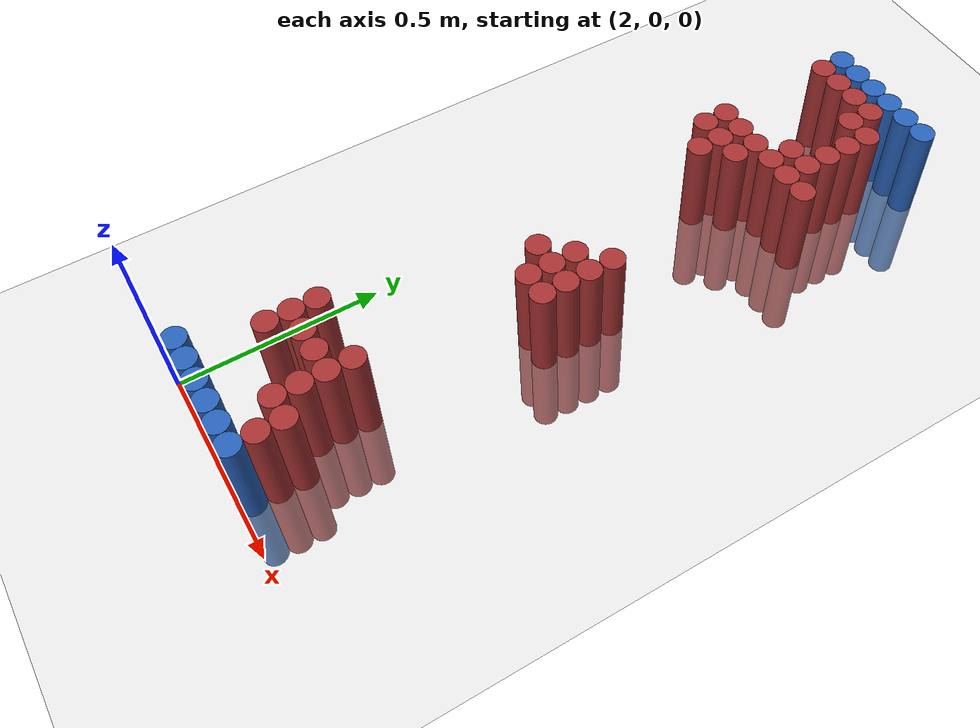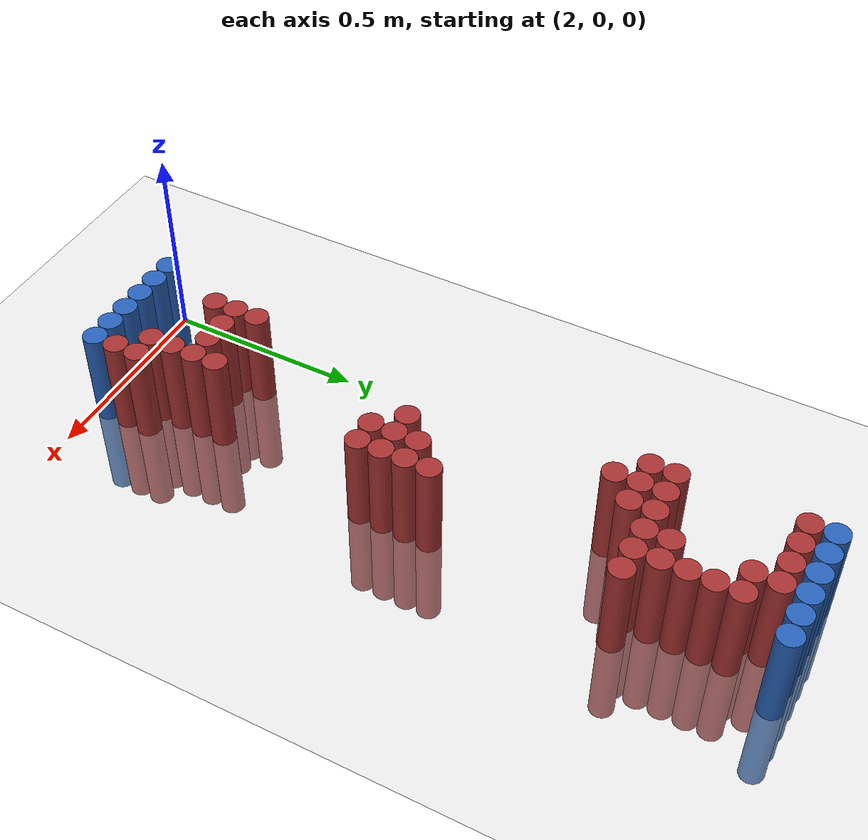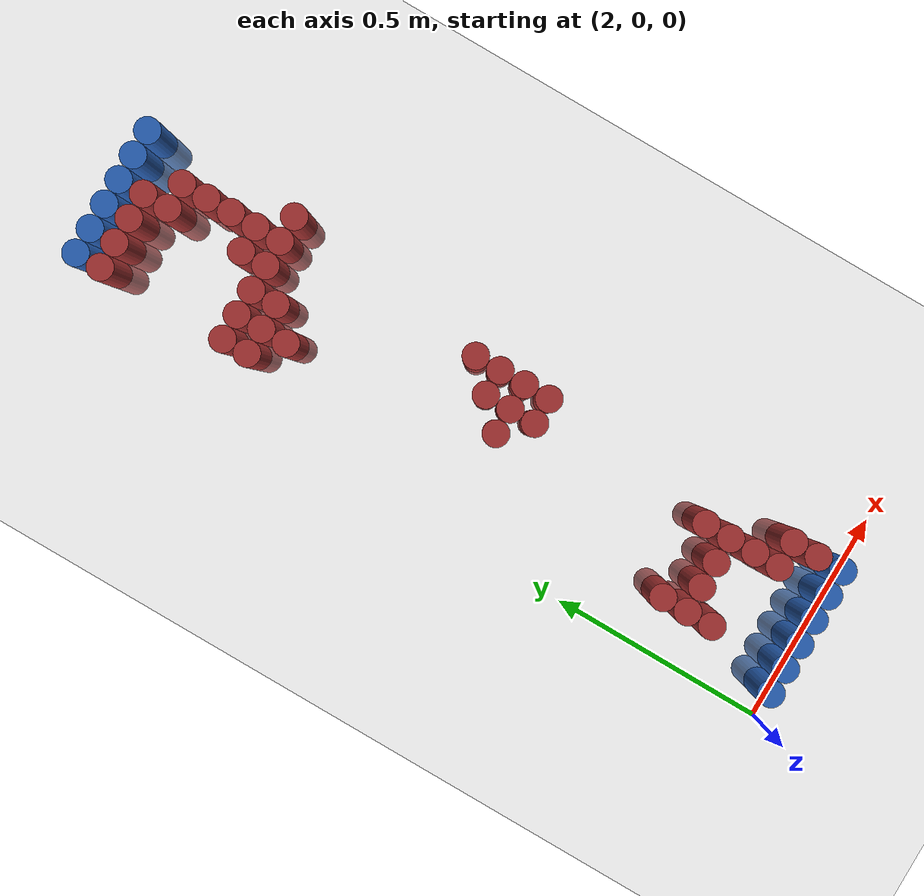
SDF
<sdf version="1.6">
 <world name="default">
  <model name="ground_plane">
   <static>1</static>
   <link name="link">
    <collision name="collision">
     <geometry><plane><normal>0 0 1</normal><size>100 100</size></plane></geometry>
     <surface><friction><ode><mu>100</mu><mu2>50</mu2></ode></friction></surface>
    </collision>
    <visual name="visual">
     <cast_shadows>0</cast_shadows>
     <geometry><plane><normal>0 0 1</normal><size>100 100</size></plane></geometry>
     <material>
      <script><uri>file://media/materials/scripts/gazebo.material</uri><name>Gazebo/Grey</name></script>
     </material>
    </visual>
   </link>
  </model>
  <model name="unit_cylinder_96">
   <static>1</static>
   <pose>2.130000 1.770000 0.000000 0.000000 0.000000 0.000000</pose>
   <link name="link">
    <inertial>
     <mass>1</mass>
     <inertia><ixx>0.145833</ixx><ixy>0</ixy><ixz>0</ixz><iyy>0.145833</iyy><iyz>0</iyz><izz>0.125</izz></inertia>
    </inertial>
    <collision name="collision">
     <geometry><cylinder><radius>0.030000</radius><length>0.5</length></cylinder></geometry>
    </collision>
    <visual name="visual">
     <geometry><cylinder><radius>0.030000</radius><length>0.5</length></cylinder></geometry>
     <material>
      <ambient>0.152000 0.379000 0.720000 1</ambient>
      <diffuse>0.152000 0.379000 0.720000 1</diffuse>
     </material>
     <material>
      <script><name>Gazebo/Grey</name><uri>file://media/materials/scripts/gazebo.material</uri></script>
     </material>
    </visual>
   </link>
  </model>
  <model name="unit_cylinder_97">
   <static>1</static>
   <pose>2.190000 1.770000 0.000000 0.000000 0.000000 0.000000</pose>
   <link name="link">
    <inertial>
     <mass>1</mass>
     <inertia><ixx>0.145833</ixx><ixy>0</ixy><ixz>0</ixz><iyy>0.145833</iyy><iyz>0</iyz><izz>0.125</izz></inertia>
    </inertial>
    <collision name="collision">
     <geometry><cylinder><radius>0.030000</radius><length>0.5</length></cylinder></geometry>
    </collision>
    <visual name="visual">
     <geometry><cylinder><radius>0.030000</radius><length>0.5</length></cylinder></geometry>
     <material>
      <ambient>0.152000 0.379000 0.720000 1</ambient>
      <diffuse>0.152000 0.379000 0.720000 1</diffuse>
     </material>
     <material>
      <script><name>Gazebo/Grey</name><uri>file://media/materials/scripts/gazebo.material</uri></script>
     </material>
    </visual>
   </link>
  </model>
  <model name="unit_cylinder_98">
   <static>1</static>
   <pose>2.250000 1.770000 0.000000 0.000000 0.000000 0.000000</pose>
   <link name="link">
    <inertial>
     <mass>1</mass>
     <inertia><ixx>0.145833</ixx><ixy>0</ixy><ixz>0</ixz><iyy>0.145833</iyy><iyz>0</iyz><izz>0.125</izz></inertia>
    </inertial>
    <collision name="collision">
     <geometry><cylinder><radius>0.030000</radius><length>0.5</length></cylinder></geometry>
    </collision>
    <visual name="visual">
     <geometry><cylinder><radius>0.030000</radius><length>0.5</length></cylinder></geometry>
     <material>
      <ambient>0.152000 0.379000 0.720000 1</ambient>
      <diffuse>0.152000 0.379000 0.720000 1</diffuse>
     </material>
     <material>
      <script><name>Gazebo/Grey</name><uri>file://media/materials/scripts/gazebo.material</uri></script>
     </material>
    </visual>
   </link>
  </model>
  <model name="unit_cylinder_99">
   <static>1</static>
   <pose>2.310000 1.770000 0.000000 0.000000 0.000000 0.000000</pose>
   <link name="link">
    <inertial>
     <mass>1</mass>
     <inertia><ixx>0.145833</ixx><ixy>0</ixy><ixz>0</ixz><iyy>0.145833</iyy><iyz>0</iyz><izz>0.125</izz></inertia>
    </inertial>
    <collision name="collision">
     <geometry><cylinder><radius>0.030000</radius><length>0.5</length></cylinder></geometry>
    </collision>
    <visual name="visual">
     <geometry><cylinder><radius>0.030000</radius><length>0.5</length></cylinder></geometry>
     <material>
      <ambient>0.152000 0.379000 0.720000 1</ambient>
      <diffuse>0.152000 0.379000 0.720000 1</diffuse>
     </material>
     <material>
      <script><name>Gazebo/Grey</name><uri>file://media/materials/scripts/gazebo.material</uri></script>
     </material>
    </visual>
   </link>
  </model>
  <model name="unit_cylinder_100">
   <static>1</static>
   <pose>2.370000 1.770000 0.000000 0.000000 0.000000 0.000000</pose>
   <link name="link">
    <inertial>
     <mass>1</mass>
     <inertia><ixx>0.145833</ixx><ixy>0</ixy><ixz>0</ixz><iyy>0.145833</iyy><iyz>0</iyz><izz>0.125</izz></inertia>
    </inertial>
    <collision name="collision">
     <geometry><cylinder><radius>0.030000</radius><length>0.5</length></cylinder></geometry>
    </collision>
    <visual name="visual">
     <geometry><cylinder><radius>0.030000</radius><length>0.5</length></cylinder></geometry>
     <material>
      <ambient>0.152000 0.379000 0.720000 1</ambient>
      <diffuse>0.152000 0.379000 0.720000 1</diffuse>
     </material>
     <material>
      <script><name>Gazebo/Grey</name><uri>file://media/materials/scripts/gazebo.material</uri></script>
     </material>
    </visual>
   </link>
  </model>
  <model name="unit_cylinder_101">
   <static>1</static>
   <pose>2.430000 1.770000 0.000000 0.000000 0.000000 0.000000</pose>
   <link name="link">
    <inertial>
     <mass>1</mass>
     <inertia><ixx>0.145833</ixx><ixy>0</ixy><ixz>0</ixz><iyy>0.145833</iyy><iyz>0</iyz><izz>0.125</izz></inertia>
    </inertial>
    <collision name="collision">
     <geometry><cylinder><radius>0.030000</radius><length>0.5</length></cylinder></geometry>
    </collision>
    <visual name="visual">
     <geometry><cylinder><radius>0.030000</radius><length>0.5</length></cylinder></geometry>
     <material>
      <ambient>0.152000 0.379000 0.720000 1</ambient>
      <diffuse>0.152000 0.379000 0.720000 1</diffuse>
     </material>
     <material>
      <script><name>Gazebo/Grey</name><uri>file://media/materials/scripts/gazebo.material</uri></script>
     </material>
    </visual>
   </link>
  </model>
  <model name="unit_cylinder_126">
   <static>1</static>
   <pose>2.130000 1.710000 0.000000 0.000000 0.000000 0.000000</pose>
   <link name="link">
    <inertial>
     <mass>1</mass>
     <inertia><ixx>0.145833</ixx><ixy>0</ixy><ixz>0</ixz><iyy>0.145833</iyy><iyz>0</iyz><izz>0.125</izz></inertia>
    </inertial>
    <collision name="collision">
     <geometry><cylinder><radius>0.030000</radius><length>0.5</length></cylinder></geometry>
    </collision>
    <visual name="visual">
     <geometry><cylinder><radius>0.030000</radius><length>0.5</length></cylinder></geometry>
     <material>
      <ambient>0.648000 0.192000 0.192000 1</ambient>
      <diffuse>0.648000 0.192000 0.192000 1</diffuse>
     </material>
     <material>
      <script><name>Gazebo/Grey</name><uri>file://media/materials/scripts/gazebo.material</uri></script>
     </material>
    </visual>
   </link>
  </model>
  <model name="unit_cylinder_127">
   <static>1</static>
   <pose>2.190000 1.710000 0.000000 0.000000 0.000000 0.000000</pose>
   <link name="link">
    <inertial>
     <mass>1</mass>
     <inertia><ixx>0.145833</ixx><ixy>0</ixy><ixz>0</ixz><iyy>0.145833</iyy><iyz>0</iyz><izz>0.125</izz></inertia>
    </inertial>
    <collision name="collision">
     <geometry><cylinder><radius>0.030000</radius><length>0.5</length></cylinder></geometry>
    </collision>
    <visual name="visual">
     <geometry><cylinder><radius>0.030000</radius><length>0.5</length></cylinder></geometry>
     <material>
      <ambient>0.648000 0.192000 0.192000 1</ambient>
      <diffuse>0.648000 0.192000 0.192000 1</diffuse>
     </material>
     <material>
      <script><name>Gazebo/Grey</name><uri>file://media/materials/scripts/gazebo.material</uri></script>
     </material>
    </visual>
   </link>
  </model>
  <model name="unit_cylinder_128">
   <static>1</static>
   <pose>2.250000 1.710000 0.000000 0.000000 0.000000 0.000000</pose>
   <link name="link">
    <inertial>
     <mass>1</mass>
     <inertia><ixx>0.145833</ixx><ixy>0</ixy><ixz>0</ixz><iyy>0.145833</iyy><iyz>0</iyz><izz>0.125</izz></inertia>
    </inertial>
    <collision name="collision">
     <geometry><cylinder><radius>0.030000</radius><length>0.5</length></cylinder></geometry>
    </collision>
    <visual name="visual">
     <geometry><cylinder><radius>0.030000</radius><length>0.5</length></cylinder></geometry>
     <material>
      <ambient>0.648000 0.192000 0.192000 1</ambient>
      <diffuse>0.648000 0.192000 0.192000 1</diffuse>
     </material>
     <material>
      <script><name>Gazebo/Grey</name><uri>file://media/materials/scripts/gazebo.material</uri></script>
     </material>
    </visual>
   </link>
  </model>
  <model name="unit_cylinder_129">
   <static>1</static>
   <pose>2.310000 1.710000 0.000000 0.000000 0.000000 0.000000</pose>
   <link name="link">
    <inertial>
     <mass>1</mass>
     <inertia><ixx>0.145833</ixx><ixy>0</ixy><ixz>0</ixz><iyy>0.145833</iyy><iyz>0</iyz><izz>0.125</izz></inertia>
    </inertial>
    <collision name="collision">
     <geometry><cylinder><radius>0.030000</radius><length>0.5</length></cylinder></geometry>
    </collision>
    <visual name="visual">
     <geometry><cylinder><radius>0.030000</radius><length>0.5</length></cylinder></geometry>
     <material>
      <ambient>0.648000 0.192000 0.192000 1</ambient>
      <diffuse>0.648000 0.192000 0.192000 1</diffuse>
     </material>
     <material>
      <script><name>Gazebo/Grey</name><uri>file://media/materials/scripts/gazebo.material</uri></script>
     </material>
    </visual>
   </link>
  </model>
  <model name="unit_cylinder_136">
   <static>1</static>
   <pose>2.310000 1.650000 0.000000 0.000000 0.000000 0.000000</pose>
   <link name="link">
    <inertial>
     <mass>1</mass>
     <inertia><ixx>0.145833</ixx><ixy>0</ixy><ixz>0</ixz><iyy>0.145833</iyy><iyz>0</iyz><izz>0.125</izz></inertia>
    </inertial>
    <collision name="collision">
     <geometry><cylinder><radius>0.030000</radius><length>0.5</length></cylinder></geometry>
    </collision>
    <visual name="visual">
     <geometry><cylinder><radius>0.030000</radius><length>0.5</length></cylinder></geometry>
     <material>
      <ambient>0.648000 0.192000 0.192000 1</ambient>
      <diffuse>0.648000 0.192000 0.192000 1</diffuse>
     </material>
     <material>
      <script><name>Gazebo/Grey</name><uri>file://media/materials/scripts/gazebo.material</uri></script>
     </material>
    </visual>
   </link>
  </model>
  <model name="unit_cylinder_137">
   <static>1</static>
   <pose>2.370000 1.650000 0.000000 0.000000 0.000000 0.000000</pose>
   <link name="link">
    <inertial>
     <mass>1</mass>
     <inertia><ixx>0.145833</ixx><ixy>0</ixy><ixz>0</ixz><iyy>0.145833</iyy><iyz>0</iyz><izz>0.125</izz></inertia>
    </inertial>
    <collision name="collision">
     <geometry><cylinder><radius>0.030000</radius><length>0.5</length></cylinder></geometry>
    </collision>
    <visual name="visual">
     <geometry><cylinder><radius>0.030000</radius><length>0.5</length></cylinder></geometry>
     <material>
      <ambient>0.648000 0.192000 0.192000 1</ambient>
      <diffuse>0.648000 0.192000 0.192000 1</diffuse>
     </material>
     <material>
      <script><name>Gazebo/Grey</name><uri>file://media/materials/scripts/gazebo.material</uri></script>
     </material>
    </visual>
   </link>
  </model>
  <model name="unit_cylinder_146">
   <static>1</static>
   <pose>2.370000 1.590000 0.000000 0.000000 0.000000 0.000000</pose>
   <link name="link">
    <inertial>
     <mass>1</mass>
     <inertia><ixx>0.145833</ixx><ixy>0</ixy><ixz>0</ixz><iyy>0.145833</iyy><iyz>0</iyz><izz>0.125</izz></inertia>
    </inertial>
    <collision name="collision">
     <geometry><cylinder><radius>0.030000</radius><length>0.5</length></cylinder></geometry>
    </collision>
    <visual name="visual">
     <geometry><cylinder><radius>0.030000</radius><length>0.5</length></cylinder></geometry>
     <material>
      <ambient>0.648000 0.192000 0.192000 1</ambient>
      <diffuse>0.648000 0.192000 0.192000 1</diffuse>
     </material>
     <material>
      <script><name>Gazebo/Grey</name><uri>file://media/materials/scripts/gazebo.material</uri></script>
     </material>
    </visual>
   </link>
  </model>
  <model name="unit_cylinder_153">
   <static>1</static>
   <pose>2.370000 1.530000 0.000000 0.000000 0.000000 0.000000</pose>
   <link name="link">
    <inertial>
     <mass>1</mass>
     <inertia><ixx>0.145833</ixx><ixy>0</ixy><ixz>0</ixz><iyy>0.145833</iyy><iyz>0</iyz><izz>0.125</izz></inertia>
    </inertial>
    <collision name="collision">
     <geometry><cylinder><radius>0.030000</radius><length>0.5</length></cylinder></geometry>
    </collision>
    <visual name="visual">
     <geometry><cylinder><radius>0.030000</radius><length>0.5</length></cylinder></geometry>
     <material>
      <ambient>0.648000 0.192000 0.192000 1</ambient>
      <diffuse>0.648000 0.192000 0.192000 1</diffuse>
     </material>
     <material>
      <script><name>Gazebo/Grey</name><uri>file://media/materials/scripts/gazebo.material</uri></script>
     </material>
    </visual>
   </link>
  </model>
  <model name="unit_cylinder_160">
   <static>1</static>
   <pose>2.310000 1.470000 0.000000 0.000000 0.000000 0.000000</pose>
   <link name="link">
    <inertial>
     <mass>1</mass>
     <inertia><ixx>0.145833</ixx><ixy>0</ixy><ixz>0</ixz><iyy>0.145833</iyy><iyz>0</iyz><izz>0.125</izz></inertia>
    </inertial>
    <collision name="collision">
     <geometry><cylinder><radius>0.030000</radius><length>0.5</length></cylinder></geometry>
    </collision>
    <visual name="visual">
     <geometry><cylinder><radius>0.030000</radius><length>0.5</length></cylinder></geometry>
     <material>
      <ambient>0.648000 0.192000 0.192000 1</ambient>
      <diffuse>0.648000 0.192000 0.192000 1</diffuse>
     </material>
     <material>
      <script><name>Gazebo/Grey</name><uri>file://media/materials/scripts/gazebo.material</uri></script>
     </material>
    </visual>
   </link>
  </model>
  <model name="unit_cylinder_161">
   <static>1</static>
   <pose>2.370000 1.470000 0.000000 0.000000 0.000000 0.000000</pose>
   <link name="link">
    <inertial>
     <mass>1</mass>
     <inertia><ixx>0.145833</ixx><ixy>0</ixy><ixz>0</ixz><iyy>0.145833</iyy><iyz>0</iyz><izz>0.125</izz></inertia>
    </inertial>
    <collision name="collision">
     <geometry><cylinder><radius>0.030000</radius><length>0.5</length></cylinder></geometry>
    </collision>
    <visual name="visual">
     <geometry><cylinder><radius>0.030000</radius><length>0.5</length></cylinder></geometry>
     <material>
      <ambient>0.648000 0.192000 0.192000 1</ambient>
      <diffuse>0.648000 0.192000 0.192000 1</diffuse>
     </material>
     <material>
      <script><name>Gazebo/Grey</name><uri>file://media/materials/scripts/gazebo.material</uri></script>
     </material>
    </visual>
   </link>
  </model>
  <model name="unit_cylinder_175">
   <static>1</static>
   <pose>2.130000 1.410000 0.000000 0.000000 0.000000 0.000000</pose>
   <link name="link">
    <inertial>
     <mass>1</mass>
     <inertia><ixx>0.145833</ixx><ixy>0</ixy><ixz>0</ixz><iyy>0.145833</iyy><iyz>0</iyz><izz>0.125</izz></inertia>
    </inertial>
    <collision name="collision">
     <geometry><cylinder><radius>0.030000</radius><length>0.5</length></cylinder></geometry>
    </collision>
    <visual name="visual">
     <geometry><cylinder><radius>0.030000</radius><length>0.5</length></cylinder></geometry>
     <material>
      <ambient>0.648000 0.192000 0.192000 1</ambient>
      <diffuse>0.648000 0.192000 0.192000 1</diffuse>
     </material>
     <material>
      <script><name>Gazebo/Grey</name><uri>file://media/materials/scripts/gazebo.material</uri></script>
     </material>
    </visual>
   </link>
  </model>
  <model name="unit_cylinder_176">
   <static>1</static>
   <pose>2.190000 1.410000 0.000000 0.000000 0.000000 0.000000</pose>
   <link name="link">
    <inertial>
     <mass>1</mass>
     <inertia><ixx>0.145833</ixx><ixy>0</ixy><ixz>0</ixz><iyy>0.145833</iyy><iyz>0</iyz><izz>0.125</izz></inertia>
    </inertial>
    <collision name="collision">
     <geometry><cylinder><radius>0.030000</radius><length>0.5</length></cylinder></geometry>
    </collision>
    <visual name="visual">
     <geometry><cylinder><radius>0.030000</radius><length>0.5</length></cylinder></geometry>
     <material>
      <ambient>0.648000 0.192000 0.192000 1</ambient>
      <diffuse>0.648000 0.192000 0.192000 1</diffuse>
     </material>
     <material>
      <script><name>Gazebo/Grey</name><uri>file://media/materials/scripts/gazebo.material</uri></script>
     </material>
    </visual>
   </link>
  </model>
  <model name="unit_cylinder_177">
   <static>1</static>
   <pose>2.250000 1.410000 0.000000 0.000000 0.000000 0.000000</pose>
   <link name="link">
    <inertial>
     <mass>1</mass>
     <inertia><ixx>0.145833</ixx><ixy>0</ixy><ixz>0</ixz><iyy>0.145833</iyy><iyz>0</iyz><izz>0.125</izz></inertia>
    </inertial>
    <collision name="collision">
     <geometry><cylinder><radius>0.030000</radius><length>0.5</length></cylinder></geometry>
    </collision>
    <visual name="visual">
     <geometry><cylinder><radius>0.030000</radius><length>0.5</length></cylinder></geometry>
     <material>
      <ambient>0.648000 0.192000 0.192000 1</ambient>
      <diffuse>0.648000 0.192000 0.192000 1</diffuse>
     </material>
     <material>
      <script><name>Gazebo/Grey</name><uri>file://media/materials/scripts/gazebo.material</uri></script>
     </material>
    </visual>
   </link>
  </model>
  <model name="unit_cylinder_178">
   <static>1</static>
   <pose>2.310000 1.410000 0.000000 0.000000 0.000000 0.000000</pose>
   <link name="link">
    <inertial>
     <mass>1</mass>
     <inertia><ixx>0.145833</ixx><ixy>0</ixy><ixz>0</ixz><iyy>0.145833</iyy><iyz>0</iyz><izz>0.125</izz></inertia>
    </inertial>
    <collision name="collision">
     <geometry><cylinder><radius>0.030000</radius><length>0.5</length></cylinder></geometry>
    </collision>
    <visual name="visual">
     <geometry><cylinder><radius>0.030000</radius><length>0.5</length></cylinder></geometry>
     <material>
      <ambient>0.648000 0.192000 0.192000 1</ambient>
      <diffuse>0.648000 0.192000 0.192000 1</diffuse>
     </material>
     <material>
      <script><name>Gazebo/Grey</name><uri>file://media/materials/scripts/gazebo.material</uri></script>
     </material>
    </visual>
   </link>
  </model>
  <model name="unit_cylinder_179">
   <static>1</static>
   <pose>2.370000 1.410000 0.000000 0.000000 0.000000 0.000000</pose>
   <link name="link">
    <inertial>
     <mass>1</mass>
     <inertia><ixx>0.145833</ixx><ixy>0</ixy><ixz>0</ixz><iyy>0.145833</iyy><iyz>0</iyz><izz>0.125</izz></inertia>
    </inertial>
    <collision name="collision">
     <geometry><cylinder><radius>0.030000</radius><length>0.5</length></cylinder></geometry>
    </collision>
    <visual name="visual">
     <geometry><cylinder><radius>0.030000</radius><length>0.5</length></cylinder></geometry>
     <material>
      <ambient>0.648000 0.192000 0.192000 1</ambient>
      <diffuse>0.648000 0.192000 0.192000 1</diffuse>
     </material>
     <material>
      <script><name>Gazebo/Grey</name><uri>file://media/materials/scripts/gazebo.material</uri></script>
     </material>
    </visual>
   </link>
  </model>
  <model name="unit_cylinder_180">
   <static>1</static>
   <pose>2.430000 1.410000 0.000000 0.000000 0.000000 0.000000</pose>
   <link name="link">
    <inertial>
     <mass>1</mass>
     <inertia><ixx>0.145833</ixx><ixy>0</ixy><ixz>0</ixz><iyy>0.145833</iyy><iyz>0</iyz><izz>0.125</izz></inertia>
    </inertial>
    <collision name="collision">
     <geometry><cylinder><radius>0.030000</radius><length>0.5</length></cylinder></geometry>
    </collision>
    <visual name="visual">
     <geometry><cylinder><radius>0.030000</radius><length>0.5</length></cylinder></geometry>
     <material>
      <ambient>0.648000 0.192000 0.192000 1</ambient>
      <diffuse>0.648000 0.192000 0.192000 1</diffuse>
     </material>
     <material>
      <script><name>Gazebo/Grey</name><uri>file://media/materials/scripts/gazebo.material</uri></script>
     </material>
    </visual>
   </link>
  </model>
  <model name="unit_cylinder_190">
   <static>1</static>
   <pose>2.130000 1.350000 0.000000 0.000000 0.000000 0.000000</pose>
   <link name="link">
    <inertial>
     <mass>1</mass>
     <inertia><ixx>0.145833</ixx><ixy>0</ixy><ixz>0</ixz><iyy>0.145833</iyy><iyz>0</iyz><izz>0.125</izz></inertia>
    </inertial>
    <collision name="collision">
     <geometry><cylinder><radius>0.030000</radius><length>0.5</length></cylinder></geometry>
    </collision>
    <visual name="visual">
     <geometry><cylinder><radius>0.030000</radius><length>0.5</length></cylinder></geometry>
     <material>
      <ambient>0.648000 0.192000 0.192000 1</ambient>
      <diffuse>0.648000 0.192000 0.192000 1</diffuse>
     </material>
     <material>
      <script><name>Gazebo/Grey</name><uri>file://media/materials/scripts/gazebo.material</uri></script>
     </material>
    </visual>
   </link>
  </model>
  <model name="unit_cylinder_191">
   <static>1</static>
   <pose>2.190000 1.350000 0.000000 0.000000 0.000000 0.000000</pose>
   <link name="link">
    <inertial>
     <mass>1</mass>
     <inertia><ixx>0.145833</ixx><ixy>0</ixy><ixz>0</ixz><iyy>0.145833</iyy><iyz>0</iyz><izz>0.125</izz></inertia>
    </inertial>
    <collision name="collision">
     <geometry><cylinder><radius>0.030000</radius><length>0.5</length></cylinder></geometry>
    </collision>
    <visual name="visual">
     <geometry><cylinder><radius>0.030000</radius><length>0.5</length></cylinder></geometry>
     <material>
      <ambient>0.648000 0.192000 0.192000 1</ambient>
      <diffuse>0.648000 0.192000 0.192000 1</diffuse>
     </material>
     <material>
      <script><name>Gazebo/Grey</name><uri>file://media/materials/scripts/gazebo.material</uri></script>
     </material>
    </visual>
   </link>
  </model>
  <model name="unit_cylinder_192">
   <static>1</static>
   <pose>2.250000 1.350000 0.000000 0.000000 0.000000 0.000000</pose>
   <link name="link">
    <inertial>
     <mass>1</mass>
     <inertia><ixx>0.145833</ixx><ixy>0</ixy><ixz>0</ixz><iyy>0.145833</iyy><iyz>0</iyz><izz>0.125</izz></inertia>
    </inertial>
    <collision name="collision">
     <geometry><cylinder><radius>0.030000</radius><length>0.5</length></cylinder></geometry>
    </collision>
    <visual name="visual">
     <geometry><cylinder><radius>0.030000</radius><length>0.5</length></cylinder></geometry>
     <material>
      <ambient>0.648000 0.192000 0.192000 1</ambient>
      <diffuse>0.648000 0.192000 0.192000 1</diffuse>
     </material>
     <material>
      <script><name>Gazebo/Grey</name><uri>file://media/materials/scripts/gazebo.material</uri></script>
     </material>
    </visual>
   </link>
  </model>
  <model name="unit_cylinder_199">
   <static>1</static>
   <pose>2.190000 1.290000 0.000000 0.000000 0.000000 0.000000</pose>
   <link name="link">
    <inertial>
     <mass>1</mass>
     <inertia><ixx>0.145833</ixx><ixy>0</ixy><ixz>0</ixz><iyy>0.145833</iyy><iyz>0</iyz><izz>0.125</izz></inertia>
    </inertial>
    <collision name="collision">
     <geometry><cylinder><radius>0.030000</radius><length>0.5</length></cylinder></geometry>
    </collision>
    <visual name="visual">
     <geometry><cylinder><radius>0.030000</radius><length>0.5</length></cylinder></geometry>
     <material>
      <ambient>0.648000 0.192000 0.192000 1</ambient>
      <diffuse>0.648000 0.192000 0.192000 1</diffuse>
     </material>
     <material>
      <script><name>Gazebo/Grey</name><uri>file://media/materials/scripts/gazebo.material</uri></script>
     </material>
    </visual>
   </link>
  </model>
  <model name="unit_cylinder_242">
   <static>1</static>
   <pose>2.370000 0.930000 0.000000 0.000000 0.000000 0.000000</pose>
   <link name="link">
    <inertial>
     <mass>1</mass>
     <inertia><ixx>0.145833</ixx><ixy>0</ixy><ixz>0</ixz><iyy>0.145833</iyy><iyz>0</iyz><izz>0.125</izz></inertia>
    </inertial>
    <collision name="collision">
     <geometry><cylinder><radius>0.030000</radius><length>0.5</length></cylinder></geometry>
    </collision>
    <visual name="visual">
     <geometry><cylinder><radius>0.030000</radius><length>0.5</length></cylinder></geometry>
     <material>
      <ambient>0.648000 0.192000 0.192000 1</ambient>
      <diffuse>0.648000 0.192000 0.192000 1</diffuse>
     </material>
     <material>
      <script><name>Gazebo/Grey</name><uri>file://media/materials/scripts/gazebo.material</uri></script>
     </material>
    </visual>
   </link>
  </model>
  <model name="unit_cylinder_250">
   <static>1</static>
   <pose>2.310000 0.870000 0.000000 0.000000 0.000000 0.000000</pose>
   <link name="link">
    <inertial>
     <mass>1</mass>
     <inertia><ixx>0.145833</ixx><ixy>0</ixy><ixz>0</ixz><iyy>0.145833</iyy><iyz>0</iyz><izz>0.125</izz></inertia>
    </inertial>
    <collision name="collision">
     <geometry><cylinder><radius>0.030000</radius><length>0.5</length></cylinder></geometry>
    </collision>
    <visual name="visual">
     <geometry><cylinder><radius>0.030000</radius><length>0.5</length></cylinder></geometry>
     <material>
      <ambient>0.648000 0.192000 0.192000 1</ambient>
      <diffuse>0.648000 0.192000 0.192000 1</diffuse>
     </material>
     <material>
      <script><name>Gazebo/Grey</name><uri>file://media/materials/scripts/gazebo.material</uri></script>
     </material>
    </visual>
   </link>
  </model>
  <model name="unit_cylinder_251">
   <static>1</static>
   <pose>2.370000 0.870000 0.000000 0.000000 0.000000 0.000000</pose>
   <link name="link">
    <inertial>
     <mass>1</mass>
     <inertia><ixx>0.145833</ixx><ixy>0</ixy><ixz>0</ixz><iyy>0.145833</iyy><iyz>0</iyz><izz>0.125</izz></inertia>
    </inertial>
    <collision name="collision">
     <geometry><cylinder><radius>0.030000</radius><length>0.5</length></cylinder></geometry>
    </collision>
    <visual name="visual">
     <geometry><cylinder><radius>0.030000</radius><length>0.5</length></cylinder></geometry>
     <material>
      <ambient>0.648000 0.192000 0.192000 1</ambient>
      <diffuse>0.648000 0.192000 0.192000 1</diffuse>
     </material>
     <material>
      <script><name>Gazebo/Grey</name><uri>file://media/materials/scripts/gazebo.material</uri></script>
     </material>
    </visual>
   </link>
  </model>
  <model name="unit_cylinder_258">
   <static>1</static>
   <pose>2.250000 0.810000 0.000000 0.000000 0.000000 0.000000</pose>
   <link name="link">
    <inertial>
     <mass>1</mass>
     <inertia><ixx>0.145833</ixx><ixy>0</ixy><ixz>0</ixz><iyy>0.145833</iyy><iyz>0</iyz><izz>0.125</izz></inertia>
    </inertial>
    <collision name="collision">
     <geometry><cylinder><radius>0.030000</radius><length>0.5</length></cylinder></geometry>
    </collision>
    <visual name="visual">
     <geometry><cylinder><radius>0.030000</radius><length>0.5</length></cylinder></geometry>
     <material>
      <ambient>0.648000 0.192000 0.192000 1</ambient>
      <diffuse>0.648000 0.192000 0.192000 1</diffuse>
     </material>
     <material>
      <script><name>Gazebo/Grey</name><uri>file://media/materials/scripts/gazebo.material</uri></script>
     </material>
    </visual>
   </link>
  </model>
  <model name="unit_cylinder_259">
   <static>1</static>
   <pose>2.310000 0.810000 0.000000 0.000000 0.000000 0.000000</pose>
   <link name="link">
    <inertial>
     <mass>1</mass>
     <inertia><ixx>0.145833</ixx><ixy>0</ixy><ixz>0</ixz><iyy>0.145833</iyy><iyz>0</iyz><izz>0.125</izz></inertia>
    </inertial>
    <collision name="collision">
     <geometry><cylinder><radius>0.030000</radius><length>0.5</length></cylinder></geometry>
    </collision>
    <visual name="visual">
     <geometry><cylinder><radius>0.030000</radius><length>0.5</length></cylinder></geometry>
     <material>
      <ambient>0.648000 0.192000 0.192000 1</ambient>
      <diffuse>0.648000 0.192000 0.192000 1</diffuse>
     </material>
     <material>
      <script><name>Gazebo/Grey</name><uri>file://media/materials/scripts/gazebo.material</uri></script>
     </material>
    </visual>
   </link>
  </model>
  <model name="unit_cylinder_260">
   <static>1</static>
   <pose>2.370000 0.810000 0.000000 0.000000 0.000000 0.000000</pose>
   <link name="link">
    <inertial>
     <mass>1</mass>
     <inertia><ixx>0.145833</ixx><ixy>0</ixy><ixz>0</ixz><iyy>0.145833</iyy><iyz>0</iyz><izz>0.125</izz></inertia>
    </inertial>
    <collision name="collision">
     <geometry><cylinder><radius>0.030000</radius><length>0.5</length></cylinder></geometry>
    </collision>
    <visual name="visual">
     <geometry><cylinder><radius>0.030000</radius><length>0.5</length></cylinder></geometry>
     <material>
      <ambient>0.648000 0.192000 0.192000 1</ambient>
      <diffuse>0.648000 0.192000 0.192000 1</diffuse>
     </material>
     <material>
      <script><name>Gazebo/Grey</name><uri>file://media/materials/scripts/gazebo.material</uri></script>
     </material>
    </visual>
   </link>
  </model>
  <model name="unit_cylinder_264">
   <static>1</static>
   <pose>2.310000 0.750000 0.000000 0.000000 0.000000 0.000000</pose>
   <link name="link">
    <inertial>
     <mass>1</mass>
     <inertia><ixx>0.145833</ixx><ixy>0</ixy><ixz>0</ixz><iyy>0.145833</iyy><iyz>0</iyz><izz>0.125</izz></inertia>
    </inertial>
    <collision name="collision">
     <geometry><cylinder><radius>0.030000</radius><length>0.5</length></cylinder></geometry>
    </collision>
    <visual name="visual">
     <geometry><cylinder><radius>0.030000</radius><length>0.5</length></cylinder></geometry>
     <material>
      <ambient>0.648000 0.192000 0.192000 1</ambient>
      <diffuse>0.648000 0.192000 0.192000 1</diffuse>
     </material>
     <material>
      <script><name>Gazebo/Grey</name><uri>file://media/materials/scripts/gazebo.material</uri></script>
     </material>
    </visual>
   </link>
  </model>
  <model name="unit_cylinder_265">
   <static>1</static>
   <pose>2.370000 0.750000 0.000000 0.000000 0.000000 0.000000</pose>
   <link name="link">
    <inertial>
     <mass>1</mass>
     <inertia><ixx>0.145833</ixx><ixy>0</ixy><ixz>0</ixz><iyy>0.145833</iyy><iyz>0</iyz><izz>0.125</izz></inertia>
    </inertial>
    <collision name="collision">
     <geometry><cylinder><radius>0.030000</radius><length>0.5</length></cylinder></geometry>
    </collision>
    <visual name="visual">
     <geometry><cylinder><radius>0.030000</radius><length>0.5</length></cylinder></geometry>
     <material>
      <ambient>0.648000 0.192000 0.192000 1</ambient>
      <diffuse>0.648000 0.192000 0.192000 1</diffuse>
     </material>
     <material>
      <script><name>Gazebo/Grey</name><uri>file://media/materials/scripts/gazebo.material</uri></script>
     </material>
    </visual>
   </link>
  </model>
  <model name="unit_cylinder_276">
   <static>1</static>
   <pose>2.130000 0.330000 0.000000 0.000000 0.000000 0.000000</pose>
   <link name="link">
    <inertial>
     <mass>1</mass>
     <inertia><ixx>0.145833</ixx><ixy>0</ixy><ixz>0</ixz><iyy>0.145833</iyy><iyz>0</iyz><izz>0.125</izz></inertia>
    </inertial>
    <collision name="collision">
     <geometry><cylinder><radius>0.030000</radius><length>0.5</length></cylinder></geometry>
    </collision>
    <visual name="visual">
     <geometry><cylinder><radius>0.030000</radius><length>0.5</length></cylinder></geometry>
     <material>
      <ambient>0.648000 0.192000 0.192000 1</ambient>
      <diffuse>0.648000 0.192000 0.192000 1</diffuse>
     </material>
     <material>
      <script><name>Gazebo/Grey</name><uri>file://media/materials/scripts/gazebo.material</uri></script>
     </material>
    </visual>
   </link>
  </model>
  <model name="unit_cylinder_277">
   <static>1</static>
   <pose>2.310000 0.330000 0.000000 0.000000 0.000000 0.000000</pose>
   <link name="link">
    <inertial>
     <mass>1</mass>
     <inertia><ixx>0.145833</ixx><ixy>0</ixy><ixz>0</ixz><iyy>0.145833</iyy><iyz>0</iyz><izz>0.125</izz></inertia>
    </inertial>
    <collision name="collision">
     <geometry><cylinder><radius>0.030000</radius><length>0.5</length></cylinder></geometry>
    </collision>
    <visual name="visual">
     <geometry><cylinder><radius>0.030000</radius><length>0.5</length></cylinder></geometry>
     <material>
      <ambient>0.648000 0.192000 0.192000 1</ambient>
      <diffuse>0.648000 0.192000 0.192000 1</diffuse>
     </material>
     <material>
      <script><name>Gazebo/Grey</name><uri>file://media/materials/scripts/gazebo.material</uri></script>
     </material>
    </visual>
   </link>
  </model>
  <model name="unit_cylinder_284">
   <static>1</static>
   <pose>2.130000 0.270000 0.000000 0.000000 0.000000 0.000000</pose>
   <link name="link">
    <inertial>
     <mass>1</mass>
     <inertia><ixx>0.145833</ixx><ixy>0</ixy><ixz>0</ixz><iyy>0.145833</iyy><iyz>0</iyz><izz>0.125</izz></inertia>
    </inertial>
    <collision name="collision">
     <geometry><cylinder><radius>0.030000</radius><length>0.5</length></cylinder></geometry>
    </collision>
    <visual name="visual">
     <geometry><cylinder><radius>0.030000</radius><length>0.5</length></cylinder></geometry>
     <material>
      <ambient>0.648000 0.192000 0.192000 1</ambient>
      <diffuse>0.648000 0.192000 0.192000 1</diffuse>
     </material>
     <material>
      <script><name>Gazebo/Grey</name><uri>file://media/materials/scripts/gazebo.material</uri></script>
     </material>
    </visual>
   </link>
  </model>
  <model name="unit_cylinder_285">
   <static>1</static>
   <pose>2.190000 0.270000 0.000000 0.000000 0.000000 0.000000</pose>
   <link name="link">
    <inertial>
     <mass>1</mass>
     <inertia><ixx>0.145833</ixx><ixy>0</ixy><ixz>0</ixz><iyy>0.145833</iyy><iyz>0</iyz><izz>0.125</izz></inertia>
    </inertial>
    <collision name="collision">
     <geometry><cylinder><radius>0.030000</radius><length>0.5</length></cylinder></geometry>
    </collision>
    <visual name="visual">
     <geometry><cylinder><radius>0.030000</radius><length>0.5</length></cylinder></geometry>
     <material>
      <ambient>0.648000 0.192000 0.192000 1</ambient>
      <diffuse>0.648000 0.192000 0.192000 1</diffuse>
     </material>
     <material>
      <script><name>Gazebo/Grey</name><uri>file://media/materials/scripts/gazebo.material</uri></script>
     </material>
    </visual>
   </link>
  </model>
  <model name="unit_cylinder_286">
   <static>1</static>
   <pose>2.250000 0.270000 0.000000 0.000000 0.000000 0.000000</pose>
   <link name="link">
    <inertial>
     <mass>1</mass>
     <inertia><ixx>0.145833</ixx><ixy>0</ixy><ixz>0</ixz><iyy>0.145833</iyy><iyz>0</iyz><izz>0.125</izz></inertia>
    </inertial>
    <collision name="collision">
     <geometry><cylinder><radius>0.030000</radius><length>0.5</length></cylinder></geometry>
    </collision>
    <visual name="visual">
     <geometry><cylinder><radius>0.030000</radius><length>0.5</length></cylinder></geometry>
     <material>
      <ambient>0.648000 0.192000 0.192000 1</ambient>
      <diffuse>0.648000 0.192000 0.192000 1</diffuse>
     </material>
     <material>
      <script><name>Gazebo/Grey</name><uri>file://media/materials/scripts/gazebo.material</uri></script>
     </material>
    </visual>
   </link>
  </model>
  <model name="unit_cylinder_287">
   <static>1</static>
   <pose>2.310000 0.270000 0.000000 0.000000 0.000000 0.000000</pose>
   <link name="link">
    <inertial>
     <mass>1</mass>
     <inertia><ixx>0.145833</ixx><ixy>0</ixy><ixz>0</ixz><iyy>0.145833</iyy><iyz>0</iyz><izz>0.125</izz></inertia>
    </inertial>
    <collision name="collision">
     <geometry><cylinder><radius>0.030000</radius><length>0.5</length></cylinder></geometry>
    </collision>
    <visual name="visual">
     <geometry><cylinder><radius>0.030000</radius><length>0.5</length></cylinder></geometry>
     <material>
      <ambient>0.648000 0.192000 0.192000 1</ambient>
      <diffuse>0.648000 0.192000 0.192000 1</diffuse>
     </material>
     <material>
      <script><name>Gazebo/Grey</name><uri>file://media/materials/scripts/gazebo.material</uri></script>
     </material>
    </visual>
   </link>
  </model>
  <model name="unit_cylinder_294">
   <static>1</static>
   <pose>2.130000 0.210000 0.000000 0.000000 0.000000 0.000000</pose>
   <link name="link">
    <inertial>
     <mass>1</mass>
     <inertia><ixx>0.145833</ixx><ixy>0</ixy><ixz>0</ixz><iyy>0.145833</iyy><iyz>0</iyz><izz>0.125</izz></inertia>
    </inertial>
    <collision name="collision">
     <geometry><cylinder><radius>0.030000</radius><length>0.5</length></cylinder></geometry>
    </collision>
    <visual name="visual">
     <geometry><cylinder><radius>0.030000</radius><length>0.5</length></cylinder></geometry>
     <material>
      <ambient>0.648000 0.192000 0.192000 1</ambient>
      <diffuse>0.648000 0.192000 0.192000 1</diffuse>
     </material>
     <material>
      <script><name>Gazebo/Grey</name><uri>file://media/materials/scripts/gazebo.material</uri></script>
     </material>
    </visual>
   </link>
  </model>
  <model name="unit_cylinder_295">
   <static>1</static>
   <pose>2.310000 0.210000 0.000000 0.000000 0.000000 0.000000</pose>
   <link name="link">
    <inertial>
     <mass>1</mass>
     <inertia><ixx>0.145833</ixx><ixy>0</ixy><ixz>0</ixz><iyy>0.145833</iyy><iyz>0</iyz><izz>0.125</izz></inertia>
    </inertial>
    <collision name="collision">
     <geometry><cylinder><radius>0.030000</radius><length>0.5</length></cylinder></geometry>
    </collision>
    <visual name="visual">
     <geometry><cylinder><radius>0.030000</radius><length>0.5</length></cylinder></geometry>
     <material>
      <ambient>0.648000 0.192000 0.192000 1</ambient>
      <diffuse>0.648000 0.192000 0.192000 1</diffuse>
     </material>
     <material>
      <script><name>Gazebo/Grey</name><uri>file://media/materials/scripts/gazebo.material</uri></script>
     </material>
    </visual>
   </link>
  </model>
  <model name="unit_cylinder_300">
   <static>1</static>
   <pose>2.310000 0.150000 0.000000 0.000000 0.000000 0.000000</pose>
   <link name="link">
    <inertial>
     <mass>1</mass>
     <inertia><ixx>0.145833</ixx><ixy>0</ixy><ixz>0</ixz><iyy>0.145833</iyy><iyz>0</iyz><izz>0.125</izz></inertia>
    </inertial>
    <collision name="collision">
     <geometry><cylinder><radius>0.030000</radius><length>0.5</length></cylinder></geometry>
    </collision>
    <visual name="visual">
     <geometry><cylinder><radius>0.030000</radius><length>0.5</length></cylinder></geometry>
     <material>
      <ambient>0.648000 0.192000 0.192000 1</ambient>
      <diffuse>0.648000 0.192000 0.192000 1</diffuse>
     </material>
     <material>
      <script><name>Gazebo/Grey</name><uri>file://media/materials/scripts/gazebo.material</uri></script>
     </material>
    </visual>
   </link>
  </model>
  <model name="unit_cylinder_301">
   <static>1</static>
   <pose>2.370000 0.150000 0.000000 0.000000 0.000000 0.000000</pose>
   <link name="link">
    <inertial>
     <mass>1</mass>
     <inertia><ixx>0.145833</ixx><ixy>0</ixy><ixz>0</ixz><iyy>0.145833</iyy><iyz>0</iyz><izz>0.125</izz></inertia>
    </inertial>
    <collision name="collision">
     <geometry><cylinder><radius>0.030000</radius><length>0.5</length></cylinder></geometry>
    </collision>
    <visual name="visual">
     <geometry><cylinder><radius>0.030000</radius><length>0.5</length></cylinder></geometry>
     <material>
      <ambient>0.648000 0.192000 0.192000 1</ambient>
      <diffuse>0.648000 0.192000 0.192000 1</diffuse>
     </material>
     <material>
      <script><name>Gazebo/Grey</name><uri>file://media/materials/scripts/gazebo.material</uri></script>
     </material>
    </visual>
   </link>
  </model>
  <model name="unit_cylinder_309">
   <static>1</static>
   <pose>2.370000 0.090000 0.000000 0.000000 0.000000 0.000000</pose>
   <link name="link">
    <inertial>
     <mass>1</mass>
     <inertia><ixx>0.145833</ixx><ixy>0</ixy><ixz>0</ixz><iyy>0.145833</iyy><iyz>0</iyz><izz>0.125</izz></inertia>
    </inertial>
    <collision name="collision">
     <geometry><cylinder><radius>0.030000</radius><length>0.5</length></cylinder></geometry>
    </collision>
    <visual name="visual">
     <geometry><cylinder><radius>0.030000</radius><length>0.5</length></cylinder></geometry>
     <material>
      <ambient>0.648000 0.192000 0.192000 1</ambient>
      <diffuse>0.648000 0.192000 0.192000 1</diffuse>
     </material>
     <material>
      <script><name>Gazebo/Grey</name><uri>file://media/materials/scripts/gazebo.material</uri></script>
     </material>
    </visual>
   </link>
  </model>
  <model name="unit_cylinder_322">
   <static>1</static>
   <pose>2.070000 0.030000 0.000000 0.000000 0.000000 0.000000</pose>
   <link name="link">
    <inertial>
     <mass>1</mass>
     <inertia><ixx>0.145833</ixx><ixy>0</ixy><ixz>0</ixz><iyy>0.145833</iyy><iyz>0</iyz><izz>0.125</izz></inertia>
    </inertial>
    <collision name="collision">
     <geometry><cylinder><radius>0.030000</radius><length>0.5</length></cylinder></geometry>
    </collision>
    <visual name="visual">
     <geometry><cylinder><radius>0.030000</radius><length>0.5</length></cylinder></geometry>
     <material>
      <ambient>0.152000 0.379000 0.720000 1</ambient>
      <diffuse>0.152000 0.379000 0.720000 1</diffuse>
     </material>
     <material>
      <script><name>Gazebo/Grey</name><uri>file://media/materials/scripts/gazebo.material</uri></script>
     </material>
    </visual>
   </link>
  </model>
  <model name="unit_cylinder_323">
   <static>1</static>
   <pose>2.130000 0.030000 0.000000 0.000000 0.000000 0.000000</pose>
   <link name="link">
    <inertial>
     <mass>1</mass>
     <inertia><ixx>0.145833</ixx><ixy>0</ixy><ixz>0</ixz><iyy>0.145833</iyy><iyz>0</iyz><izz>0.125</izz></inertia>
    </inertial>
    <collision name="collision">
     <geometry><cylinder><radius>0.030000</radius><length>0.5</length></cylinder></geometry>
    </collision>
    <visual name="visual">
     <geometry><cylinder><radius>0.030000</radius><length>0.5</length></cylinder></geometry>
     <material>
      <ambient>0.152000 0.379000 0.720000 1</ambient>
      <diffuse>0.152000 0.379000 0.720000 1</diffuse>
     </material>
     <material>
      <script><name>Gazebo/Grey</name><uri>file://media/materials/scripts/gazebo.material</uri></script>
     </material>
    </visual>
   </link>
  </model>
  <model name="unit_cylinder_324">
   <static>1</static>
   <pose>2.190000 0.030000 0.000000 0.000000 0.000000 0.000000</pose>
   <link name="link">
    <inertial>
     <mass>1</mass>
     <inertia><ixx>0.145833</ixx><ixy>0</ixy><ixz>0</ixz><iyy>0.145833</iyy><iyz>0</iyz><izz>0.125</izz></inertia>
    </inertial>
    <collision name="collision">
     <geometry><cylinder><radius>0.030000</radius><length>0.5</length></cylinder></geometry>
    </collision>
    <visual name="visual">
     <geometry><cylinder><radius>0.030000</radius><length>0.5</length></cylinder></geometry>
     <material>
      <ambient>0.152000 0.379000 0.720000 1</ambient>
      <diffuse>0.152000 0.379000 0.720000 1</diffuse>
     </material>
     <material>
      <script><name>Gazebo/Grey</name><uri>file://media/materials/scripts/gazebo.material</uri></script>
     </material>
    </visual>
   </link>
  </model>
  <model name="unit_cylinder_325">
   <static>1</static>
   <pose>2.250000 0.030000 0.000000 0.000000 0.000000 0.000000</pose>
   <link name="link">
    <inertial>
     <mass>1</mass>
     <inertia><ixx>0.145833</ixx><ixy>0</ixy><ixz>0</ixz><iyy>0.145833</iyy><iyz>0</iyz><izz>0.125</izz></inertia>
    </inertial>
    <collision name="collision">
     <geometry><cylinder><radius>0.030000</radius><length>0.5</length></cylinder></geometry>
    </collision>
    <visual name="visual">
     <geometry><cylinder><radius>0.030000</radius><length>0.5</length></cylinder></geometry>
     <material>
      <ambient>0.152000 0.379000 0.720000 1</ambient>
      <diffuse>0.152000 0.379000 0.720000 1</diffuse>
     </material>
     <material>
      <script><name>Gazebo/Grey</name><uri>file://media/materials/scripts/gazebo.material</uri></script>
     </material>
    </visual>
   </link>
  </model>
  <model name="unit_cylinder_326">
   <static>1</static>
   <pose>2.310000 0.030000 0.000000 0.000000 0.000000 0.000000</pose>
   <link name="link">
    <inertial>
     <mass>1</mass>
     <inertia><ixx>0.145833</ixx><ixy>0</ixy><ixz>0</ixz><iyy>0.145833</iyy><iyz>0</iyz><izz>0.125</izz></inertia>
    </inertial>
    <collision name="collision">
     <geometry><cylinder><radius>0.030000</radius><length>0.5</length></cylinder></geometry>
    </collision>
    <visual name="visual">
     <geometry><cylinder><radius>0.030000</radius><length>0.5</length></cylinder></geometry>
     <material>
      <ambient>0.152000 0.379000 0.720000 1</ambient>
      <diffuse>0.152000 0.379000 0.720000 1</diffuse>
     </material>
     <material>
      <script><name>Gazebo/Grey</name><uri>file://media/materials/scripts/gazebo.material</uri></script>
     </material>
    </visual>
   </link>
  </model>
  <model name="unit_cylinder_327">
   <static>1</static>
   <pose>2.370000 0.030000 0.000000 0.000000 0.000000 0.000000</pose>
   <link name="link">
    <inertial>
     <mass>1</mass>
     <inertia><ixx>0.145833</ixx><ixy>0</ixy><ixz>0</ixz><iyy>0.145833</iyy><iyz>0</iyz><izz>0.125</izz></inertia>
    </inertial>
    <collision name="collision">
     <geometry><cylinder><radius>0.030000</radius><length>0.5</length></cylinder></geometry>
    </collision>
    <visual name="visual">
     <geometry><cylinder><radius>0.030000</radius><length>0.5</length></cylinder></geometry>
     <material>
      <ambient>0.152000 0.379000 0.720000 1</ambient>
      <diffuse>0.152000 0.379000 0.720000 1</diffuse>
     </material>
     <material>
      <script><name>Gazebo/Grey</name><uri>file://media/materials/scripts/gazebo.material</uri></script>
     </material>
    </visual>
   </link>
  </model>
 </world>
</sdf>
